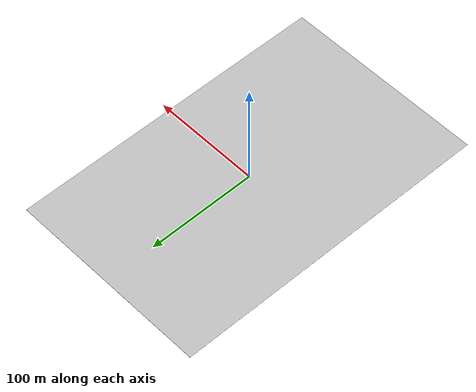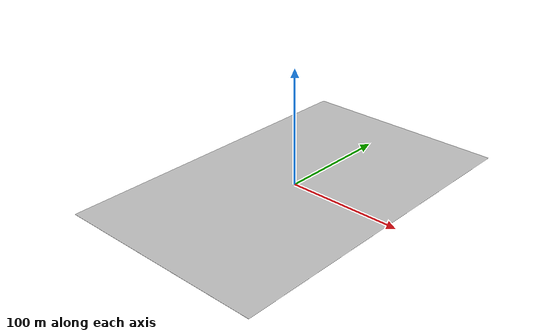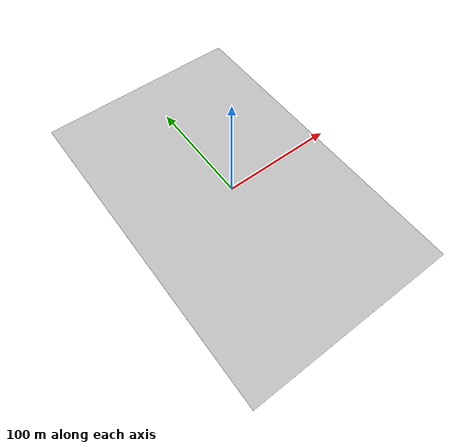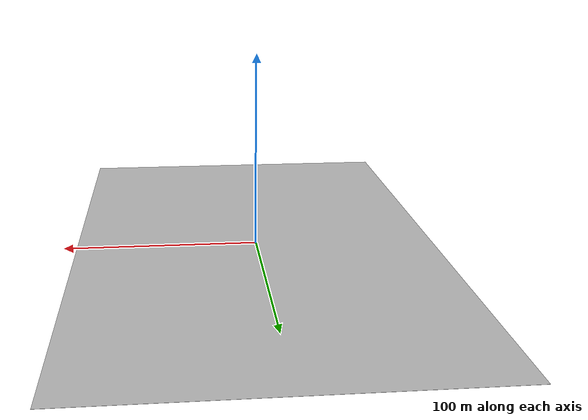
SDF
<sdf version="1.4">
 <world name="evora_solar_panel_farm_world">
  <physics type="ode">
   <ode>
    <solver><type>quick</type><iters>10</iters><sor>1.3</sor></solver>
    <constraints>
     <cfm>0</cfm>
     <erp>0.2</erp>
     <contact_max_correcting_vel>100</contact_max_correcting_vel>
     <contact_surface_layer>0.001</contact_surface_layer>
    </constraints>
   </ode>
   <max_step_size>0.004</max_step_size>
   <real_time_factor>1</real_time_factor>
   <real_time_update_rate>250</real_time_update_rate>
   <gravity>0 0 -9.8</gravity>
   <magnetic_field>6e-06 2.3e-05 -4.2e-05</magnetic_field>
  </physics>
  <include><uri>model://evora_solar_panel_farm</uri></include>
  <include><uri>model://sun</uri></include>
 </world>
</sdf>

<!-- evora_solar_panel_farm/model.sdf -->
<sdf version="1.5">
  <model name="evora_solar_panel_farm">
    <static>true</static>
    <link name="floor">
      <collision name="collision">
        <geometry>
          <box>
            <size>186.84 293.66 .1</size>
          </box>
        </geometry>
      </collision>
      <visual name="visual">
        <cast_shadows>false</cast_shadows>
        <geometry>
          <box>
            <size>186.84 293.66 .1</size>
          </box>
        </geometry>
        <material>
          <script>
            <uri>model://evora_solar_panel_farm/materials/scripts</uri>
            <uri>model://evora_solar_panel_farm/materials/textures</uri>
            <name>evora_solar_panel_farm</name>
          </script>
        </material>
      </visual>
    </link>
  </model>
</sdf>
